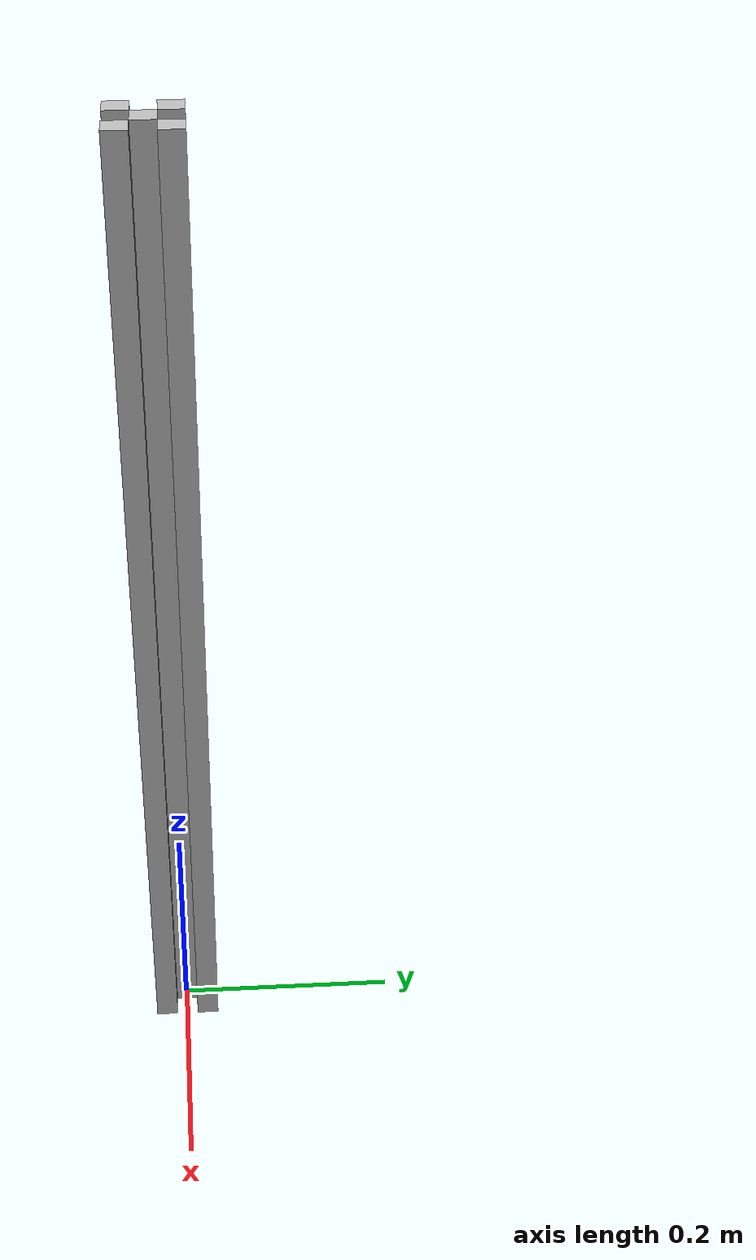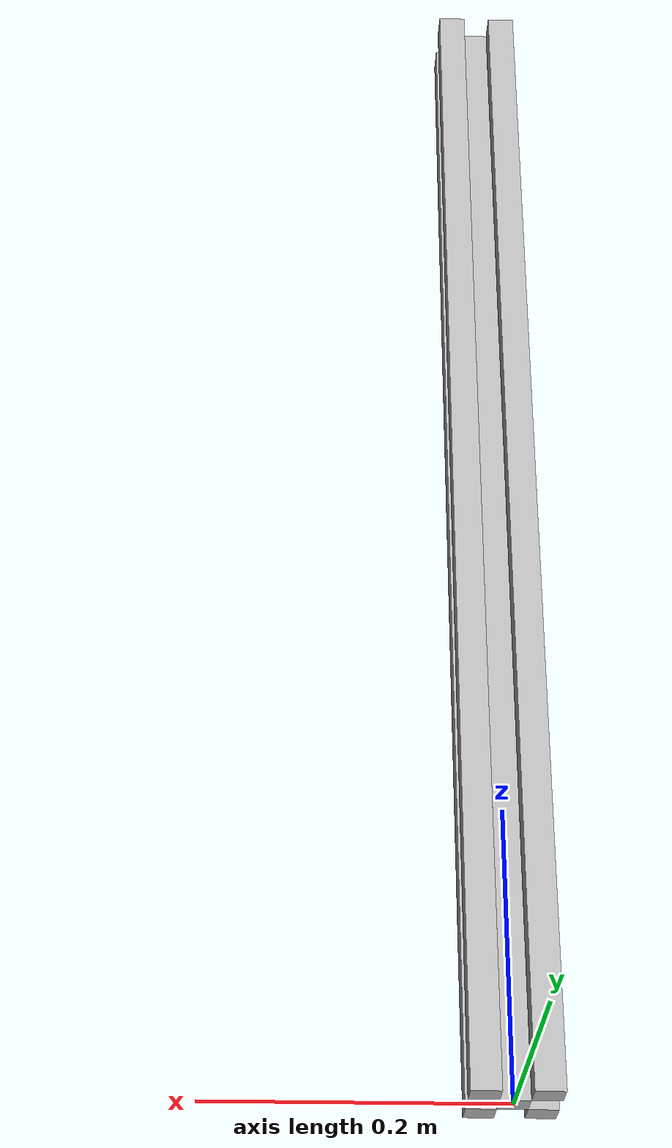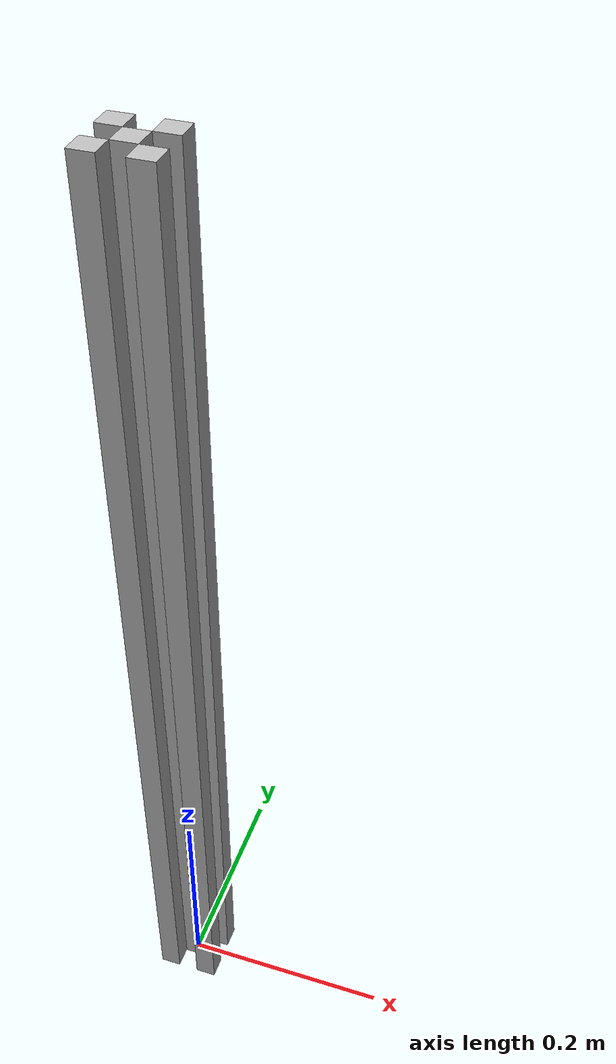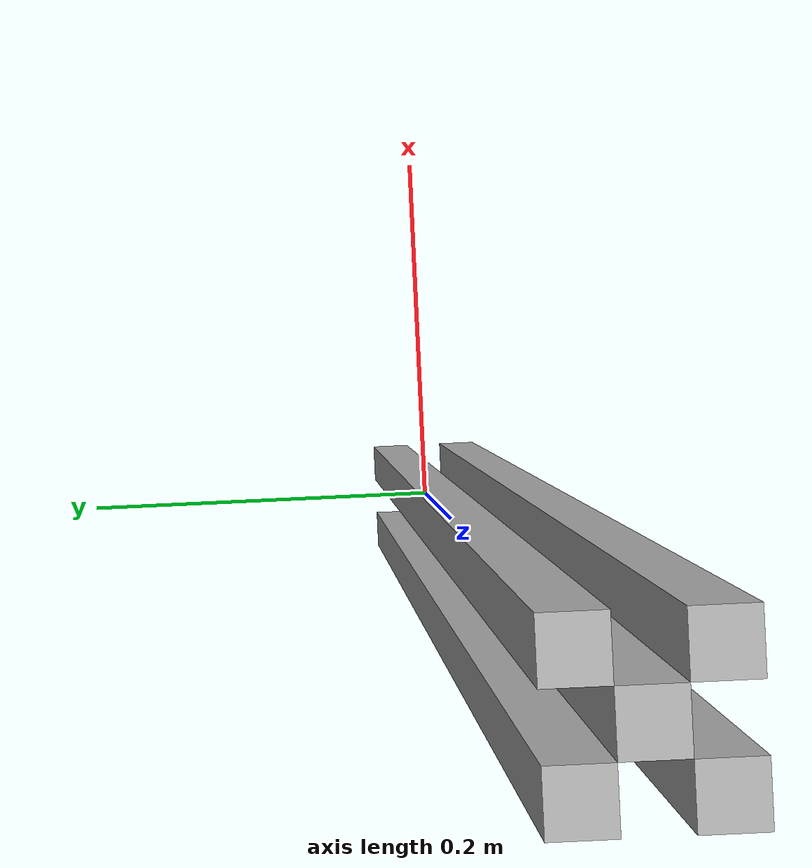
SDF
<?xml version='1.0'?>
<sdf version='1.4'>
  <model name="top">
  <static>true</static>

	<link name='chassis1'>
            <collision name="surface">
        <pose>0 0 0.445 0 0 0</pose>
        <geometry>
          <box>
            <size>0.02 0.02 0.89</size>
          </box>
        </geometry>
        <surface>
          <friction>
            <ode>
              <mu>0.6</mu>
              <mu2>0.6</mu2>
            </ode>
          </friction>
        </surface>
      </collision>
      <visual name="visual1">
        <pose>0 0 0.445 0 0 0</pose>
        <geometry>
          <box>
            <size>0.02 0.02 0.89</size>
          </box>
        </geometry>

      </visual>
</link>

<link name='chassis2'>
            <collision name="surface">
        <pose>0.02 0.02 0.445 0 0 0</pose>
        <geometry>
          <box>
            <size>0.02 0.02 0.89</size>
          </box>
        </geometry>
        <surface>
          <friction>
            <ode>
              <mu>0.6</mu>
              <mu2>0.6</mu2>
            </ode>
          </friction>
        </surface>
      </collision>
      <visual name="visual1">
        <pose>0.02 0.02 0.445 0 0 0</pose>
        <geometry>
          <box>
            <size>0.02 0.02 0.89</size>
          </box>
        </geometry>

      </visual>
</link>

<link name='chassis3'>
            <collision name="surface">
        <pose>-0.02 0.02 0.445 0 0 0</pose>
        <geometry>
          <box>
            <size>0.02 0.02 0.89</size>
          </box>
        </geometry>
        <surface>
          <friction>
            <ode>
              <mu>0.6</mu>
              <mu2>0.6</mu2>
            </ode>
          </friction>
        </surface>
      </collision>
      <visual name="visual1">
        <pose>-0.02 0.02 0.445 0 0 0</pose>
        <geometry>
          <box>
            <size>0.02 0.02 0.89</size>
          </box>
        </geometry>

      </visual>
</link>

	<link name='chassis4'>
            <collision name="surface">
        <pose>-0.02 -0.02 0.445 0 0 0</pose>
        <geometry>
          <box>
            <size>0.02 0.02 0.89</size>
          </box>
        </geometry>
        <surface>
          <friction>
            <ode>
              <mu>0.6</mu>
              <mu2>0.6</mu2>
            </ode>
          </friction>
        </surface>
      </collision>
      <visual name="visual1">
        <pose>-0.02 -0.02 0.445 0 0 0</pose>
        <geometry>
          <box>
            <size>0.02 0.02 0.89</size>
          </box>
        </geometry>

      </visual>
</link>

<link name='chassis5'>
            <collision name="surface">
        <pose>0.02 -0.02 0.445 0 0 0</pose>
        <geometry>
          <box>
            <size>0.02 0.02 0.89</size>
          </box>
        </geometry>
        <surface>
          <friction>
            <ode>
              <mu>0.6</mu>
              <mu2>0.6</mu2>
            </ode>
          </friction>
        </surface>
      </collision>
      <visual name="visual1">
        <pose>0.02 -0.02 0.445 0 0 0</pose>
        <geometry>
          <box>
            <size>0.02 0.02 0.89</size>
          </box>
        </geometry>

      </visual>
</link>

  </model>
</sdf>
